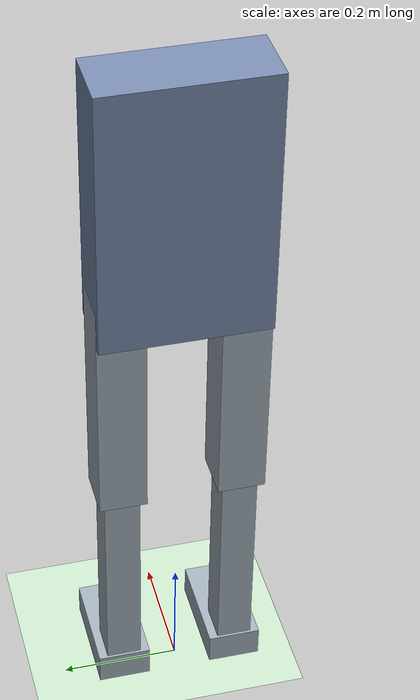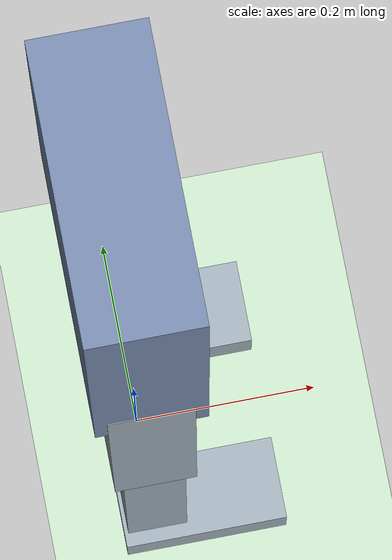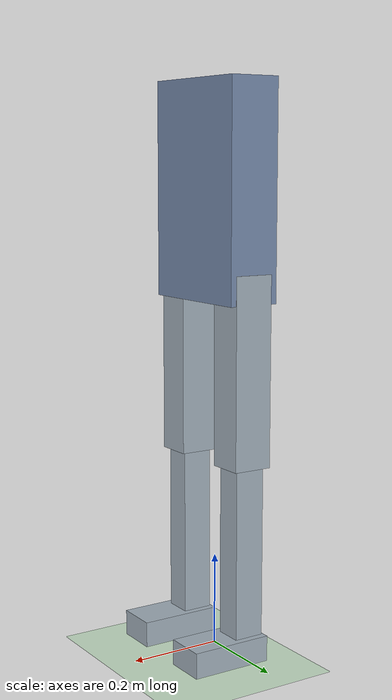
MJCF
<mujoco model="bipedal">
  <compiler angle="radian" coordinate="global" inertiafromgeom="true"/>
  <size nuserdata="18"/>
  <default>
    <joint armature="0.01" damping=".1" limited="true"/>
    <geom conaffinity="1" condim="1" contype="1" margin="0.001" density="1000" friction=".9 .1 .1" rgba="0.8 0.6 .4 1"/>
  </default>
  <option integrator="RK4" timestep="0.002"/>
  <worldbody>
    <light cutoff="100" diffuse="1 1 1" dir="-0 0 -1.3" directional="true" exponent="1" pos="0 0 1.3" specular=".1 .1 .1"/>
    <geom conaffinity="1" condim="3" name="floor" pos="0 0 0" rgba="0.8 0.9 0.8 1" size="40 40 40" type="plane" material="MatPlane"/>
    <body name="root">
      <camera name="track" mode="trackcom" pos="2 -3 1" xyaxes="1 .6 0 0 0 1"/>
      <geom friction="0.9" name="torso_geom" mass="25" pos="0 0 0.9829" size="0.055 0.139 0.225" rgba="0.4706 0.549 0.6863 1" type="box"/>
      <joint armature="0" axis="1 0 0" damping="0" limited="false" name="rootx" pos="0 0 0" stiffness="0" type="slide"/>
      <joint armature="0" axis="0 0 1" damping="0" limited="false" name="rootz" pos="0 0 0" ref="0.9829" stiffness="0" type="slide"/>
      <joint armature="0" axis="0 1 0" damping="0" limited="false" name="rooty" pos="0 0 0.9829" stiffness="0" type="hinge"/>
      <body name="right_hip">
        <geom friction="0.9" name="right_hip_geom" mass="3" pos="0 -0.1 0.6184" size="0.0423 0.04 0.2" rgba="0.6392 0.6941 0.7372 1" type="box"/>
        <joint axis="0 -1 0" name="right_hip_joint" pos="0 -0.1 0.7929" range="-1.2 2.57" type="hinge"/>
        <body name="right_knee">
          <geom friction="0.9" name="right_knee_geom"  mass="2" pos="0 -0.1 0.2579" size="0.0325 0.03 0.208" rgba="0.6392 0.6941 0.7372 1" type="box"/>
          <joint axis="0 -1 0" name="right_knee_joint" pos="0 -0.1 0.4409" range="-3.14 0" type="hinge"/>
          <body name="right_ankle">
          <geom friction="0.9" name="right_ankle_geom" mass="1" pos="0.0518 -0.1 0.0275" size="0.0885 0.045 0.0275" rgba="0.6392 0.6941 0.7372 1" type="box"/>
            <joint axis="0 -1 0" name="right_ankle_joint" pos="0 -0.1 0.0499" range="-1.57 1.57" type="hinge"/>
          </body>
        </body>
      </body>
      <!-- create the left part -->
      <body name="left_hip">
        <geom friction="0.9" name="left_hip_geom" mass="3" pos="0 0.1 0.6184" size="0.0423 0.04 0.2" rgba="0.6392 0.6941 0.7372 1" type="box"/>
        <joint axis="0 -1 0" name="left_hip_joint" pos="0 -0.1 0.7929" range="-1.2 2.57" type="hinge"/>
        <body name="left_knee">
          <geom friction="0.9" name="left_knee_geom" mass="2" pos="0 0.1 0.2579" size="0.0325 0.03 0.208" rgba="0.6392 0.6941 0.7372 1" type="box"/>
          <joint axis="0 -1 0" name="left_knee_joint" pos="0 -0.1 0.4409" range="-3.14 0" type="hinge"/>
          <body name="left_ankle">
          <geom friction="0.9" name="left_ankle_geom" mass="1" pos="0.0518 0.1 0.0275" size="0.0885 0.045 0.0275" rgba="0.6392 0.6941 0.7372 1" type="box"/>
            <joint axis="0 -1 0" name="left_ankle_joint" pos="0 -0.1 0.0499" range="-1.57 1.57" type="hinge"/>
          </body>
        </body>
      </body>
    </body>
  </worldbody>
  <actuator>

  	<general gaintype="user" biastype="user" forcerange="-150 150" gainprm="300 10 0.1 0.1 0.1 0" joint="right_hip_joint"/>
  	<general gaintype="user" biastype="user" forcerange="-100 100" gainprm="200 10 0.1 0.1 0.1 0" joint="right_knee_joint"/>
  	<general gaintype="user" biastype="user" forcerange="-50 50" gainprm="50 10 0.1 0.1 0.1 0" joint="right_ankle_joint"/>
  	<general gaintype="user" biastype="user" forcerange="-150 150" gainprm="300 10 0.1 0.1 0.1 0" joint="left_hip_joint"/>
  	<general gaintype="user" biastype="user" forcerange="-100 100" gainprm="200 10 0.1 0.1 0.1 0" joint="left_knee_joint"/>
  	<general gaintype="user" biastype="user" forcerange="-50 50" gainprm="50 10 0.1 0.1 0.1 0" joint="left_ankle_joint"/>
  </actuator>
    <asset>
        <texture builtin="gradient" height="100" rgb1=".4 .5 .6" rgb2="0 0 0" type="skybox" width="100"/>
        <texture builtin="flat" height="1278" mark="cross" markrgb="1 1 1" name="texgeom" random="0.01" rgb1="0.8 0.6 0.4" rgb2="0.8 0.6 0.4" type="cube" width="127"/>
        <texture name="grid" type="2d" builtin="checker" rgb1=".1 .2 .3" rgb2=".2 .3 .4" width="300" height="300" mark="edge" markrgb=".2 .3 .4"/>
        <material name="MatPlane" reflectance="0.2" texrepeat="1 1" texuniform="true" texture="grid"/>
        <material name="geom" texture="texgeom" texuniform="true"/>
    </asset>
</mujoco>
